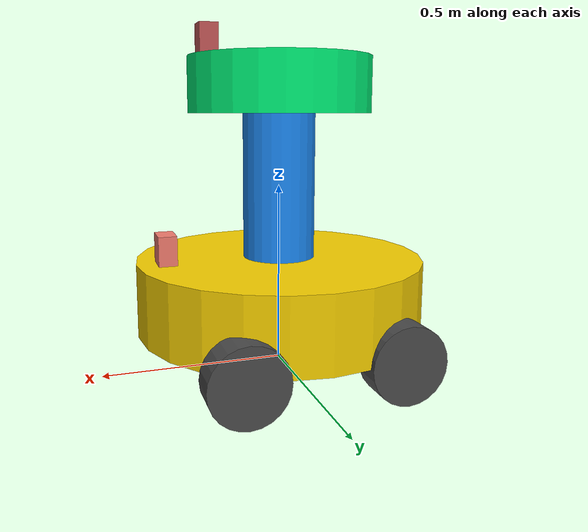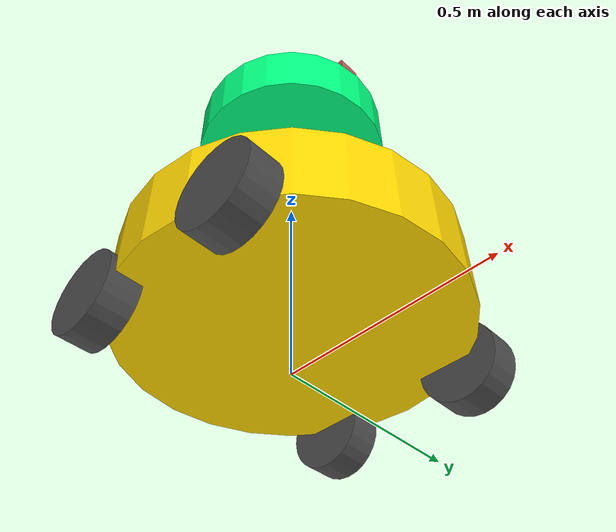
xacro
<?xml version="1.0"?>
<robot name="lesson13_robot" xmlns:xacro="http://www.ros.org/wiki/xacro">
  <xacro:include filename="myrobot_4wd_tf_step11h.xacro"/>
  <xacro:include filename="gazebo_sensor/lesson14_laser_step7.xacro"/>
</robot>

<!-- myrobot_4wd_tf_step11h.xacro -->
<robot name="lesson13_robot" xmlns:xacro="http://www.ros.org/wiki/xacro">
  <xacro:include filename="myrobot_4wd_drive_step11c.xacro"/>

  <gazebo>
    <plugin name="lesson14_four_wheel_joint_states"
            filename="libgazebo_ros_joint_state_publisher.so">
      <robotNamespace>/</robotNamespace>
      <updateRate>50</updateRate>
      <jointName>front_left_wheel_joint,front_right_wheel_joint,rear_left_wheel_joint,rear_right_wheel_joint,depth_camera_link2base_link,laser_scan_link2platform_link</jointName>
    </plugin>
  </gazebo>
</robot>

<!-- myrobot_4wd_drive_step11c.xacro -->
<!-- Step 11C: add ONE four-motor controller to the unchanged step11A body.
     Drive-only acceptance: no live sensors, joint-state publisher or RViz yet. -->
<robot name="lesson13_robot" xmlns:xacro="http://www.ros.org/wiki/xacro">
  <xacro:include filename="myrobot_4wd_base_step11a.xacro"/>

  <gazebo>
    <plugin name="lesson14_four_wheel_drive"
            filename="/home/thl/catkin_ws/devel/lib/librcdp_4wd_stampfix.so">
      <!-- robotNamespace is omitted intentionally: the plugin defaults to "".
           This launch has no namespace; command/odometry topics are absolute. -->
      <leftFrontJoint>front_left_wheel_joint</leftFrontJoint>
      <rightFrontJoint>front_right_wheel_joint</rightFrontJoint>
      <leftRearJoint>rear_left_wheel_joint</leftRearJoint>
      <rightRearJoint>rear_right_wheel_joint</rightRearJoint>

      <!-- Actual left/right wheel-center distance, NOT the front/rear wheelbase. -->
      <wheelSeparation>0.72</wheelSeparation>
      <wheelDiameter>0.20</wheelDiameter>
      <torque>5.0</torque>
      <updateRate>100.0</updateRate>

      <commandTopic>/cmd_vel</commandTopic>
      <odometryTopic>/odom</odometryTopic>
      <odometryFrame>odom</odometryFrame>
      <robotBaseFrame>root_link</robotBaseFrame>
      <broadcastTF>true</broadcastTF>
      <covariance_x>0.0001</covariance_x>
      <covariance_y>0.0001</covariance_y>
      <covariance_yaw>0.01</covariance_yaw>
    </plugin>
  </gazebo>
</robot>

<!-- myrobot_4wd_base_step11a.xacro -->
<robot name="lesson13_robot" xmlns:xacro="http://www.ros.org/wiki/xacro">
  <xacro:property name="Pi" value="3.141592653589793"/>
  <xacro:property name="base_radius" value="0.4"/>
  <xacro:property name="base_height" value="0.2"/>
  <xacro:property name="move_wheel_radius" value="0.1"/>
  <xacro:property name="move_wheel_height" value="0.08"/>
  <!-- Initial teaching-model dimensions: front/rear spacing and left/right spacing. -->
  <xacro:property name="wheelbase" value="0.4"/>
  <xacro:property name="track_width" value="0.72"/>
  <xacro:property name="support_radius" value="0.1"/>
  <xacro:property name="support_height" value="0.4"/>
  <xacro:property name="platform_radius" value="0.25"/>
  <xacro:property name="platform_height" value="0.15"/>
  <xacro:property name="laser_length" value="0.05"/>
  <xacro:property name="laser_width" value="0.06"/>
  <xacro:property name="laser_height" value="0.08"/>
  <xacro:property name="depth_length" value="0.05"/>
  <xacro:property name="depth_width" value="0.08"/>
  <xacro:property name="depth_height" value="0.08"/>

  <!-- Cylinder symmetry axis is the link's Z axis. -->
  <xacro:macro name="cylinder_z_inertia" params="m r h">
    <inertial>
      <origin xyz="0 0 0" rpy="0 0 0"/>
      <mass value="${m}"/>
      <inertia ixx="${m*(3*r*r+h*h)/12.0}" ixy="0" ixz="0"
               iyy="${m*(3*r*r+h*h)/12.0}" iyz="0" izz="${m*r*r/2.0}"/>
    </inertial>
  </xacro:macro>

  <!-- Wheel cylinder symmetry axis is Y, matching its collision and joint. -->
  <xacro:macro name="wheel_y_inertia" params="m r h">
    <inertial>
      <origin xyz="0 0 0" rpy="0 0 0"/>
      <mass value="${m}"/>
      <inertia ixx="${m*(3*r*r+h*h)/12.0}" ixy="0" ixz="0"
               iyy="${m*r*r/2.0}" iyz="0" izz="${m*(3*r*r+h*h)/12.0}"/>
    </inertial>
  </xacro:macro>

  <!-- Box dimensions are x along X, y along Y, z along Z. -->
  <xacro:macro name="box_inertia" params="m x y z">
    <inertial>
      <origin xyz="0 0 0" rpy="0 0 0"/>
      <mass value="${m}"/>
      <inertia ixx="${m*(y*y+z*z)/12.0}" ixy="0" ixz="0"
               iyy="${m*(x*x+z*z)/12.0}" iyz="0" izz="${m*(x*x+y*y)/12.0}"/>
    </inertial>
  </xacro:macro>

  <xacro:macro name="cylinder_body" params="name r h m rgba gz_material">
    <link name="${name}">
      <visual>
        <geometry><cylinder radius="${r}" length="${h}"/></geometry>
        <material name="${name}_color"><color rgba="${rgba}"/></material>
      </visual>
      <collision>
        <geometry><cylinder radius="${r}" length="${h}"/></geometry>
      </collision>
      <xacro:cylinder_z_inertia m="${m}" r="${r}" h="${h}"/>
    </link>
    <gazebo reference="${name}"><material>${gz_material}</material></gazebo>
  </xacro:macro>

  <xacro:macro name="box_body" params="name x y z m rgba gz_material">
    <link name="${name}">
      <visual>
        <geometry><box size="${x} ${y} ${z}"/></geometry>
        <material name="${name}_color"><color rgba="${rgba}"/></material>
      </visual>
      <collision><geometry><box size="${x} ${y} ${z}"/></geometry></collision>
      <xacro:box_inertia m="${m}" x="${x}" y="${y}" z="${z}"/>
    </link>
    <gazebo reference="${name}"><material>${gz_material}</material></gazebo>
  </xacro:macro>

  <xacro:macro name="contact_parameters" params="name mu">
    <gazebo reference="${name}">
      <mu1>${mu}</mu1><mu2>${mu}</mu2>
      <kp>100000</kp><kd>10</kd>
      <minDepth>0.001</minDepth><maxVel>0.1</maxVel>
    </gazebo>
  </xacro:macro>

  <!-- Massless reference only: no tiny physical body or inertia at the root. -->
  <link name="root_link"/>

  <xacro:cylinder_body name="base_link" r="${base_radius}" h="${base_height}"
                       m="5.0" rgba="1 0.843 0 1" gz_material="Gazebo/Yellow"/>
  <xacro:cylinder_body name="support_link" r="${support_radius}" h="${support_height}"
                       m="0.3" rgba="0.118 0.565 1 1" gz_material="Gazebo/Blue"/>
  <xacro:cylinder_body name="platform_link" r="${platform_radius}" h="${platform_height}"
                       m="1.0" rgba="0 1 0.498 1" gz_material="Gazebo/Green"/>

  <joint name="base_link2root_link" type="fixed">
    <parent link="root_link"/><child link="base_link"/>
    <origin xyz="0 0 ${base_height/2.0+move_wheel_radius}" rpy="0 0 0"/>
  </joint>
  <joint name="support_link2base_link" type="fixed">
    <parent link="base_link"/><child link="support_link"/>
    <origin xyz="0 0 ${base_height/2.0+support_height/2.0}" rpy="0 0 0"/>
  </joint>
  <joint name="platform_link2support_link" type="fixed">
    <parent link="support_link"/><child link="platform_link"/>
    <origin xyz="0 0 ${support_height/2.0+platform_height/2.0}" rpy="0 0 0"/>
  </joint>

  <!-- X forward, Y left, Z up; all four joint axes point along +Y.
       Positive wheel speed will have the same forward convention on both sides. -->
  <xacro:macro name="drive_wheel" params="wheel_name x_sign y_sign">
    <link name="${wheel_name}_wheel_link">
      <visual>
        <origin xyz="0 0 0" rpy="${Pi/2.0} 0 0"/>
        <geometry><cylinder radius="${move_wheel_radius}" length="${move_wheel_height}"/></geometry>
        <material name="${wheel_name}_wheel_color"><color rgba="0.3 0.3 0.3 1"/></material>
      </visual>
      <collision>
        <origin xyz="0 0 0" rpy="${Pi/2.0} 0 0"/>
        <geometry><cylinder radius="${move_wheel_radius}" length="${move_wheel_height}"/></geometry>
      </collision>
      <xacro:wheel_y_inertia m="0.3" r="${move_wheel_radius}" h="${move_wheel_height}"/>
    </link>
    <joint name="${wheel_name}_wheel_joint" type="continuous">
      <parent link="base_link"/><child link="${wheel_name}_wheel_link"/>
      <origin xyz="${x_sign*wheelbase/2.0} ${y_sign*track_width/2.0} ${-base_height/2.0}" rpy="0 0 0"/>
      <axis xyz="0 1 0"/>
      <limit effort="10" velocity="10"/>
      <dynamics damping="0.02" friction="0"/>
    </joint>
    <gazebo reference="${wheel_name}_wheel_link"><material>Gazebo/Grey</material></gazebo>
    <xacro:contact_parameters name="${wheel_name}_wheel_link" mu="0.8"/>
  </xacro:macro>
  <xacro:drive_wheel wheel_name="front_left" x_sign="1" y_sign="1"/>
  <xacro:drive_wheel wheel_name="front_right" x_sign="1" y_sign="-1"/>
  <xacro:drive_wheel wheel_name="rear_left" x_sign="-1" y_sign="1"/>
  <xacro:drive_wheel wheel_name="rear_right" x_sign="-1" y_sign="-1"/>

  <xacro:box_body name="laser_scan_link" x="${laser_length}" y="${laser_width}" z="${laser_height}"
                  m="0.1" rgba="0.804 0.361 0.361 1" gz_material="Gazebo/Red"/>
  <xacro:box_body name="depth_camera_link" x="${depth_length}" y="${depth_width}" z="${depth_height}"
                  m="0.1" rgba="0.981 0.502 0.447 1" gz_material="Gazebo/Orange"/>

  <joint name="laser_scan_link2platform_link" type="continuous">
    <parent link="platform_link"/><child link="laser_scan_link"/>
    <origin xyz="${0.8*platform_radius} 0 ${platform_height/2.0+laser_height/2.0}" rpy="0 0 0"/>
    <axis xyz="0 0 1"/>
    <limit effort="1" velocity="5"/>
    <dynamics damping="0.05" friction="0"/>
  </joint>
  <joint name="depth_camera_link2base_link" type="revolute">
    <parent link="base_link"/><child link="depth_camera_link"/>
    <origin xyz="${0.8*base_radius} 0 ${base_height/2.0+depth_height/2.0}" rpy="0 0 0"/>
    <axis xyz="0 0 1"/>
    <!-- The slide requires +/-180 degrees; the original code used +/-1.57. -->
    <limit lower="${-Pi}" upper="${Pi}" effort="10" velocity="3"/>
    <dynamics damping="0.05" friction="0"/>
  </joint>

  <gazebo><static>false</static></gazebo>
</robot>
